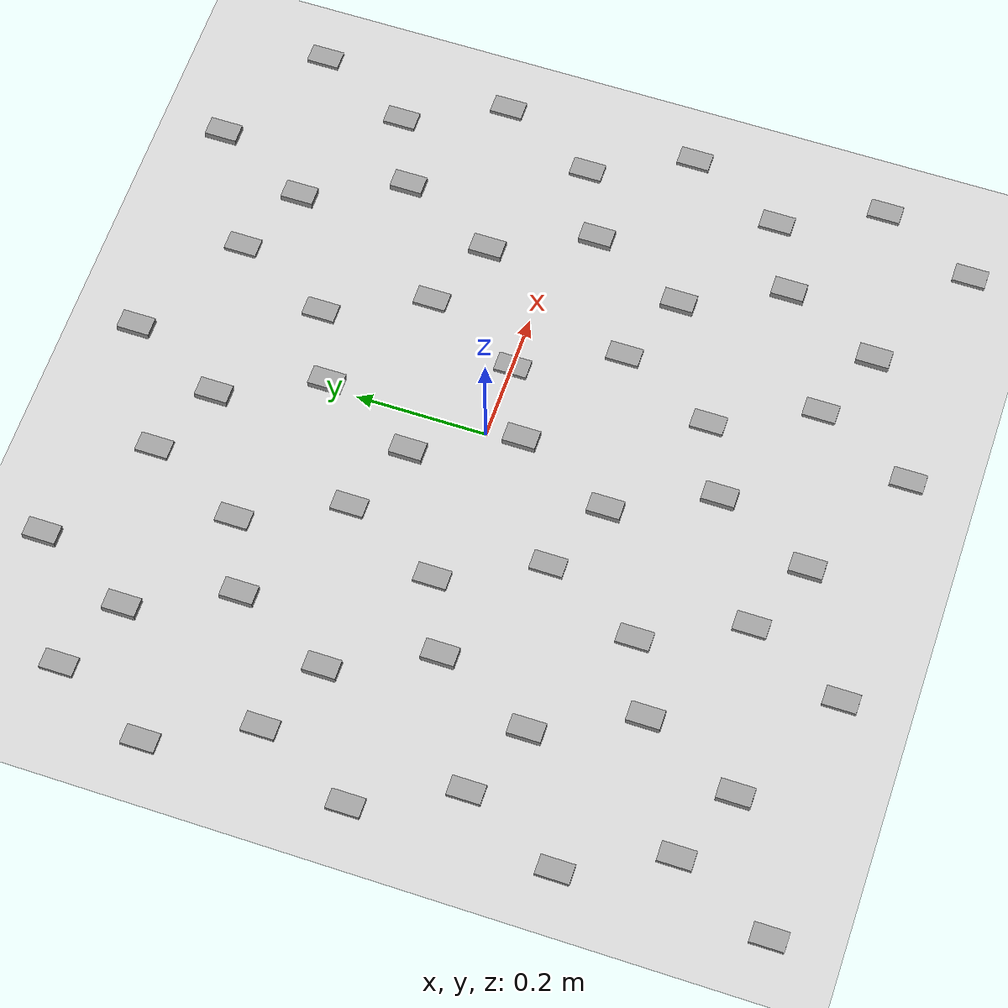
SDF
<sdf version="1.5">
 <world name="default">
  <model name="unit_box_0">
   <pose>-0.6 -0.6 0 0 0 0</pose>
   <link name="link">
    <inertial>
     <mass>1</mass>
     <inertia><ixx>0</ixx><ixy>0</ixy><ixz>0</ixz><iyy>0</iyy><iyz>0</iyz><izz>0</izz></inertia>
    </inertial>
    <collision name="collision"><geometry><box><size>0.03 0.05 0.01</size></box></geometry></collision>
    <visual name="visual">
     <geometry><box><size>0.03 0.05 0.01</size></box></geometry>
     <material>
      <script><name>Gazebo/Grey</name><uri>file://media/materials/scripts/gazebo.material</uri></script>
     </material>
    </visual>
   </link>
  </model>
  <model name="unit_box_1">
   <pose>-0.53 -0.45 0 0 0 0</pose>
   <link name="link">
    <inertial>
     <mass>1</mass>
     <inertia><ixx>0</ixx><ixy>0</ixy><ixz>0</ixz><iyy>0</iyy><iyz>0</iyz><izz>0</izz></inertia>
    </inertial>
    <collision name="collision"><geometry><box><size>0.03 0.05 0.01</size></box></geometry></collision>
    <visual name="visual">
     <geometry><box><size>0.03 0.05 0.01</size></box></geometry>
     <material>
      <script><name>Gazebo/Grey</name><uri>file://media/materials/scripts/gazebo.material</uri></script>
     </material>
    </visual>
   </link>
  </model>
  <model name="unit_box_2">
   <pose>-0.6 -0.3 0 0 0 0</pose>
   <link name="link">
    <inertial>
     <mass>1</mass>
     <inertia><ixx>0</ixx><ixy>0</ixy><ixz>0</ixz><iyy>0</iyy><iyz>0</iyz><izz>0</izz></inertia>
    </inertial>
    <collision name="collision"><geometry><box><size>0.03 0.05 0.01</size></box></geometry></collision>
    <visual name="visual">
     <geometry><box><size>0.03 0.05 0.01</size></box></geometry>
     <material>
      <script><name>Gazebo/Grey</name><uri>file://media/materials/scripts/gazebo.material</uri></script>
     </material>
    </visual>
   </link>
  </model>
  <model name="unit_box_3">
   <pose>-0.53 -0.15 0 0 0 0</pose>
   <link name="link">
    <inertial>
     <mass>1</mass>
     <inertia><ixx>0</ixx><ixy>0</ixy><ixz>0</ixz><iyy>0</iyy><iyz>0</iyz><izz>0</izz></inertia>
    </inertial>
    <collision name="collision"><geometry><box><size>0.03 0.05 0.01</size></box></geometry></collision>
    <visual name="visual">
     <geometry><box><size>0.03 0.05 0.01</size></box></geometry>
     <material>
      <script><name>Gazebo/Grey</name><uri>file://media/materials/scripts/gazebo.material</uri></script>
     </material>
    </visual>
   </link>
  </model>
  <model name="unit_box_4">
   <pose>-0.6 6.93889390390723e-17 0 0 0 0</pose>
   <link name="link">
    <inertial>
     <mass>1</mass>
     <inertia><ixx>0</ixx><ixy>0</ixy><ixz>0</ixz><iyy>0</iyy><iyz>0</iyz><izz>0</izz></inertia>
    </inertial>
    <collision name="collision"><geometry><box><size>0.03 0.05 0.01</size></box></geometry></collision>
    <visual name="visual">
     <geometry><box><size>0.03 0.05 0.01</size></box></geometry>
     <material>
      <script><name>Gazebo/Grey</name><uri>file://media/materials/scripts/gazebo.material</uri></script>
     </material>
    </visual>
   </link>
  </model>
  <model name="unit_box_5">
   <pose>-0.53 0.15 0 0 0 0</pose>
   <link name="link">
    <inertial>
     <mass>1</mass>
     <inertia><ixx>0</ixx><ixy>0</ixy><ixz>0</ixz><iyy>0</iyy><iyz>0</iyz><izz>0</izz></inertia>
    </inertial>
    <collision name="collision"><geometry><box><size>0.03 0.05 0.01</size></box></geometry></collision>
    <visual name="visual">
     <geometry><box><size>0.03 0.05 0.01</size></box></geometry>
     <material>
      <script><name>Gazebo/Grey</name><uri>file://media/materials/scripts/gazebo.material</uri></script>
     </material>
    </visual>
   </link>
  </model>
  <model name="unit_box_6">
   <pose>-0.6 0.3 0 0 0 0</pose>
   <link name="link">
    <inertial>
     <mass>1</mass>
     <inertia><ixx>0</ixx><ixy>0</ixy><ixz>0</ixz><iyy>0</iyy><iyz>0</iyz><izz>0</izz></inertia>
    </inertial>
    <collision name="collision"><geometry><box><size>0.03 0.05 0.01</size></box></geometry></collision>
    <visual name="visual">
     <geometry><box><size>0.03 0.05 0.01</size></box></geometry>
     <material>
      <script><name>Gazebo/Grey</name><uri>file://media/materials/scripts/gazebo.material</uri></script>
     </material>
    </visual>
   </link>
  </model>
  <model name="unit_box_7">
   <pose>-0.53 0.45 0 0 0 0</pose>
   <link name="link">
    <inertial>
     <mass>1</mass>
     <inertia><ixx>0</ixx><ixy>0</ixy><ixz>0</ixz><iyy>0</iyy><iyz>0</iyz><izz>0</izz></inertia>
    </inertial>
    <collision name="collision"><geometry><box><size>0.03 0.05 0.01</size></box></geometry></collision>
    <visual name="visual">
     <geometry><box><size>0.03 0.05 0.01</size></box></geometry>
     <material>
      <script><name>Gazebo/Grey</name><uri>file://media/materials/scripts/gazebo.material</uri></script>
     </material>
    </visual>
   </link>
  </model>
  <model name="unit_box_8">
   <pose>-0.42 -0.5 0 0 0 0</pose>
   <link name="link">
    <inertial>
     <mass>1</mass>
     <inertia><ixx>0</ixx><ixy>0</ixy><ixz>0</ixz><iyy>0</iyy><iyz>0</iyz><izz>0</izz></inertia>
    </inertial>
    <collision name="collision"><geometry><box><size>0.03 0.05 0.02</size></box></geometry></collision>
    <visual name="visual">
     <geometry><box><size>0.03 0.05 0.02</size></box></geometry>
     <material>
      <script><name>Gazebo/Grey</name><uri>file://media/materials/scripts/gazebo.material</uri></script>
     </material>
    </visual>
   </link>
  </model>
  <model name="unit_box_9">
   <pose>-0.35 -0.35 0 0 0 0</pose>
   <link name="link">
    <inertial>
     <mass>1</mass>
     <inertia><ixx>0</ixx><ixy>0</ixy><ixz>0</ixz><iyy>0</iyy><iyz>0</iyz><izz>0</izz></inertia>
    </inertial>
    <collision name="collision"><geometry><box><size>0.03 0.05 0.02</size></box></geometry></collision>
    <visual name="visual">
     <geometry><box><size>0.03 0.05 0.02</size></box></geometry>
     <material>
      <script><name>Gazebo/Grey</name><uri>file://media/materials/scripts/gazebo.material</uri></script>
     </material>
    </visual>
   </link>
  </model>
  <model name="unit_box_10">
   <pose>-0.42 -0.2 0 0 0 0</pose>
   <link name="link">
    <inertial>
     <mass>1</mass>
     <inertia><ixx>0</ixx><ixy>0</ixy><ixz>0</ixz><iyy>0</iyy><iyz>0</iyz><izz>0</izz></inertia>
    </inertial>
    <collision name="collision"><geometry><box><size>0.03 0.05 0.02</size></box></geometry></collision>
    <visual name="visual">
     <geometry><box><size>0.03 0.05 0.02</size></box></geometry>
     <material>
      <script><name>Gazebo/Grey</name><uri>file://media/materials/scripts/gazebo.material</uri></script>
     </material>
    </visual>
   </link>
  </model>
  <model name="unit_box_11">
   <pose>-0.35 -0.05 0 0 0 0</pose>
   <link name="link">
    <inertial>
     <mass>1</mass>
     <inertia><ixx>0</ixx><ixy>0</ixy><ixz>0</ixz><iyy>0</iyy><iyz>0</iyz><izz>0</izz></inertia>
    </inertial>
    <collision name="collision"><geometry><box><size>0.03 0.05 0.02</size></box></geometry></collision>
    <visual name="visual">
     <geometry><box><size>0.03 0.05 0.02</size></box></geometry>
     <material>
      <script><name>Gazebo/Grey</name><uri>file://media/materials/scripts/gazebo.material</uri></script>
     </material>
    </visual>
   </link>
  </model>
  <model name="unit_box_12">
   <pose>-0.42 0.1 0 0 0 0</pose>
   <link name="link">
    <inertial>
     <mass>1</mass>
     <inertia><ixx>0</ixx><ixy>0</ixy><ixz>0</ixz><iyy>0</iyy><iyz>0</iyz><izz>0</izz></inertia>
    </inertial>
    <collision name="collision"><geometry><box><size>0.03 0.05 0.02</size></box></geometry></collision>
    <visual name="visual">
     <geometry><box><size>0.03 0.05 0.02</size></box></geometry>
     <material>
      <script><name>Gazebo/Grey</name><uri>file://media/materials/scripts/gazebo.material</uri></script>
     </material>
    </visual>
   </link>
  </model>
  <model name="unit_box_13">
   <pose>-0.35 0.25 0 0 0 0</pose>
   <link name="link">
    <inertial>
     <mass>1</mass>
     <inertia><ixx>0</ixx><ixy>0</ixy><ixz>0</ixz><iyy>0</iyy><iyz>0</iyz><izz>0</izz></inertia>
    </inertial>
    <collision name="collision"><geometry><box><size>0.03 0.05 0.02</size></box></geometry></collision>
    <visual name="visual">
     <geometry><box><size>0.03 0.05 0.02</size></box></geometry>
     <material>
      <script><name>Gazebo/Grey</name><uri>file://media/materials/scripts/gazebo.material</uri></script>
     </material>
    </visual>
   </link>
  </model>
  <model name="unit_box_14">
   <pose>-0.42 0.4 0 0 0 0</pose>
   <link name="link">
    <inertial>
     <mass>1</mass>
     <inertia><ixx>0</ixx><ixy>0</ixy><ixz>0</ixz><iyy>0</iyy><iyz>0</iyz><izz>0</izz></inertia>
    </inertial>
    <collision name="collision"><geometry><box><size>0.03 0.05 0.02</size></box></geometry></collision>
    <visual name="visual">
     <geometry><box><size>0.03 0.05 0.02</size></box></geometry>
     <material>
      <script><name>Gazebo/Grey</name><uri>file://media/materials/scripts/gazebo.material</uri></script>
     </material>
    </visual>
   </link>
  </model>
  <model name="unit_box_15">
   <pose>-0.35 0.55 0 0 0 0</pose>
   <link name="link">
    <inertial>
     <mass>1</mass>
     <inertia><ixx>0</ixx><ixy>0</ixy><ixz>0</ixz><iyy>0</iyy><iyz>0</iyz><izz>0</izz></inertia>
    </inertial>
    <collision name="collision"><geometry><box><size>0.03 0.05 0.02</size></box></geometry></collision>
    <visual name="visual">
     <geometry><box><size>0.03 0.05 0.02</size></box></geometry>
     <material>
      <script><name>Gazebo/Grey</name><uri>file://media/materials/scripts/gazebo.material</uri></script>
     </material>
    </visual>
   </link>
  </model>
  <model name="unit_box_16">
   <pose>-0.24 -0.6 0 0 0 0</pose>
   <link name="link">
    <inertial>
     <mass>1</mass>
     <inertia><ixx>0</ixx><ixy>0</ixy><ixz>0</ixz><iyy>0</iyy><iyz>0</iyz><izz>0</izz></inertia>
    </inertial>
    <collision name="collision"><geometry><box><size>0.03 0.05 0.01</size></box></geometry></collision>
    <visual name="visual">
     <geometry><box><size>0.03 0.05 0.01</size></box></geometry>
     <material>
      <script><name>Gazebo/Grey</name><uri>file://media/materials/scripts/gazebo.material</uri></script>
     </material>
    </visual>
   </link>
  </model>
  <model name="unit_box_17">
   <pose>-0.17 -0.45 0 0 0 0</pose>
   <link name="link">
    <inertial>
     <mass>1</mass>
     <inertia><ixx>0</ixx><ixy>0</ixy><ixz>0</ixz><iyy>0</iyy><iyz>0</iyz><izz>0</izz></inertia>
    </inertial>
    <collision name="collision"><geometry><box><size>0.03 0.05 0.01</size></box></geometry></collision>
    <visual name="visual">
     <geometry><box><size>0.03 0.05 0.01</size></box></geometry>
     <material>
      <script><name>Gazebo/Grey</name><uri>file://media/materials/scripts/gazebo.material</uri></script>
     </material>
    </visual>
   </link>
  </model>
  <model name="unit_box_18">
   <pose>-0.24 -0.3 0 0 0 0</pose>
   <link name="link">
    <inertial>
     <mass>1</mass>
     <inertia><ixx>0</ixx><ixy>0</ixy><ixz>0</ixz><iyy>0</iyy><iyz>0</iyz><izz>0</izz></inertia>
    </inertial>
    <collision name="collision"><geometry><box><size>0.03 0.05 0.01</size></box></geometry></collision>
    <visual name="visual">
     <geometry><box><size>0.03 0.05 0.01</size></box></geometry>
     <material>
      <script><name>Gazebo/Grey</name><uri>file://media/materials/scripts/gazebo.material</uri></script>
     </material>
    </visual>
   </link>
  </model>
  <model name="unit_box_19">
   <pose>-0.17 -0.15 0 0 0 0</pose>
   <link name="link">
    <inertial>
     <mass>1</mass>
     <inertia><ixx>0</ixx><ixy>0</ixy><ixz>0</ixz><iyy>0</iyy><iyz>0</iyz><izz>0</izz></inertia>
    </inertial>
    <collision name="collision"><geometry><box><size>0.03 0.05 0.01</size></box></geometry></collision>
    <visual name="visual">
     <geometry><box><size>0.03 0.05 0.01</size></box></geometry>
     <material>
      <script><name>Gazebo/Grey</name><uri>file://media/materials/scripts/gazebo.material</uri></script>
     </material>
    </visual>
   </link>
  </model>
  <model name="unit_box_20">
   <pose>-0.24 6.93889390390723e-17 0 0 0 0</pose>
   <link name="link">
    <inertial>
     <mass>1</mass>
     <inertia><ixx>0</ixx><ixy>0</ixy><ixz>0</ixz><iyy>0</iyy><iyz>0</iyz><izz>0</izz></inertia>
    </inertial>
    <collision name="collision"><geometry><box><size>0.03 0.05 0.01</size></box></geometry></collision>
    <visual name="visual">
     <geometry><box><size>0.03 0.05 0.01</size></box></geometry>
     <material>
      <script><name>Gazebo/Grey</name><uri>file://media/materials/scripts/gazebo.material</uri></script>
     </material>
    </visual>
   </link>
  </model>
  <model name="unit_box_21">
   <pose>-0.17 0.15 0 0 0 0</pose>
   <link name="link">
    <inertial>
     <mass>1</mass>
     <inertia><ixx>0</ixx><ixy>0</ixy><ixz>0</ixz><iyy>0</iyy><iyz>0</iyz><izz>0</izz></inertia>
    </inertial>
    <collision name="collision"><geometry><box><size>0.03 0.05 0.01</size></box></geometry></collision>
    <visual name="visual">
     <geometry><box><size>0.03 0.05 0.01</size></box></geometry>
     <material>
      <script><name>Gazebo/Grey</name><uri>file://media/materials/scripts/gazebo.material</uri></script>
     </material>
    </visual>
   </link>
  </model>
  <model name="unit_box_22">
   <pose>-0.24 0.3 0 0 0 0</pose>
   <link name="link">
    <inertial>
     <mass>1</mass>
     <inertia><ixx>0</ixx><ixy>0</ixy><ixz>0</ixz><iyy>0</iyy><iyz>0</iyz><izz>0</izz></inertia>
    </inertial>
    <collision name="collision"><geometry><box><size>0.03 0.05 0.01</size></box></geometry></collision>
    <visual name="visual">
     <geometry><box><size>0.03 0.05 0.01</size></box></geometry>
     <material>
      <script><name>Gazebo/Grey</name><uri>file://media/materials/scripts/gazebo.material</uri></script>
     </material>
    </visual>
   </link>
  </model>
  <model name="unit_box_23">
   <pose>-0.17 0.45 0 0 0 0</pose>
   <link name="link">
    <inertial>
     <mass>1</mass>
     <inertia><ixx>0</ixx><ixy>0</ixy><ixz>0</ixz><iyy>0</iyy><iyz>0</iyz><izz>0</izz></inertia>
    </inertial>
    <collision name="collision"><geometry><box><size>0.03 0.05 0.01</size></box></geometry></collision>
    <visual name="visual">
     <geometry><box><size>0.03 0.05 0.01</size></box></geometry>
     <material>
      <script><name>Gazebo/Grey</name><uri>file://media/materials/scripts/gazebo.material</uri></script>
     </material>
    </visual>
   </link>
  </model>
  <model name="unit_box_24">
   <pose>-0.0599999999999999 -0.5 0 0 0 0</pose>
   <link name="link">
    <inertial>
     <mass>1</mass>
     <inertia><ixx>0</ixx><ixy>0</ixy><ixz>0</ixz><iyy>0</iyy><iyz>0</iyz><izz>0</izz></inertia>
    </inertial>
    <collision name="collision"><geometry><box><size>0.03 0.05 0.02</size></box></geometry></collision>
    <visual name="visual">
     <geometry><box><size>0.03 0.05 0.02</size></box></geometry>
     <material>
      <script><name>Gazebo/Grey</name><uri>file://media/materials/scripts/gazebo.material</uri></script>
     </material>
    </visual>
   </link>
  </model>
  <model name="unit_box_25">
   <pose>0.0100000000000001 -0.35 0 0 0 0</pose>
   <link name="link">
    <inertial>
     <mass>1</mass>
     <inertia><ixx>0</ixx><ixy>0</ixy><ixz>0</ixz><iyy>0</iyy><iyz>0</iyz><izz>0</izz></inertia>
    </inertial>
    <collision name="collision"><geometry><box><size>0.03 0.05 0.02</size></box></geometry></collision>
    <visual name="visual">
     <geometry><box><size>0.03 0.05 0.02</size></box></geometry>
     <material>
      <script><name>Gazebo/Grey</name><uri>file://media/materials/scripts/gazebo.material</uri></script>
     </material>
    </visual>
   </link>
  </model>
  <model name="unit_box_26">
   <pose>-0.0599999999999999 -0.2 0 0 0 0</pose>
   <link name="link">
    <inertial>
     <mass>1</mass>
     <inertia><ixx>0</ixx><ixy>0</ixy><ixz>0</ixz><iyy>0</iyy><iyz>0</iyz><izz>0</izz></inertia>
    </inertial>
    <collision name="collision"><geometry><box><size>0.03 0.05 0.02</size></box></geometry></collision>
    <visual name="visual">
     <geometry><box><size>0.03 0.05 0.02</size></box></geometry>
     <material>
      <script><name>Gazebo/Grey</name><uri>file://media/materials/scripts/gazebo.material</uri></script>
     </material>
    </visual>
   </link>
  </model>
  <model name="unit_box_27">
   <pose>0.0100000000000001 -0.05 0 0 0 0</pose>
   <link name="link">
    <inertial>
     <mass>1</mass>
     <inertia><ixx>0</ixx><ixy>0</ixy><ixz>0</ixz><iyy>0</iyy><iyz>0</iyz><izz>0</izz></inertia>
    </inertial>
    <collision name="collision"><geometry><box><size>0.03 0.05 0.02</size></box></geometry></collision>
    <visual name="visual">
     <geometry><box><size>0.03 0.05 0.02</size></box></geometry>
     <material>
      <script><name>Gazebo/Grey</name><uri>file://media/materials/scripts/gazebo.material</uri></script>
     </material>
    </visual>
   </link>
  </model>
  <model name="unit_box_28">
   <pose>-0.0599999999999999 0.1 0 0 0 0</pose>
   <link name="link">
    <inertial>
     <mass>1</mass>
     <inertia><ixx>0</ixx><ixy>0</ixy><ixz>0</ixz><iyy>0</iyy><iyz>0</iyz><izz>0</izz></inertia>
    </inertial>
    <collision name="collision"><geometry><box><size>0.03 0.05 0.02</size></box></geometry></collision>
    <visual name="visual">
     <geometry><box><size>0.03 0.05 0.02</size></box></geometry>
     <material>
      <script><name>Gazebo/Grey</name><uri>file://media/materials/scripts/gazebo.material</uri></script>
     </material>
    </visual>
   </link>
  </model>
  <model name="unit_box_29">
   <pose>0.0100000000000001 0.25 0 0 0 0</pose>
   <link name="link">
    <inertial>
     <mass>1</mass>
     <inertia><ixx>0</ixx><ixy>0</ixy><ixz>0</ixz><iyy>0</iyy><iyz>0</iyz><izz>0</izz></inertia>
    </inertial>
    <collision name="collision"><geometry><box><size>0.03 0.05 0.02</size></box></geometry></collision>
    <visual name="visual">
     <geometry><box><size>0.03 0.05 0.02</size></box></geometry>
     <material>
      <script><name>Gazebo/Grey</name><uri>file://media/materials/scripts/gazebo.material</uri></script>
     </material>
    </visual>
   </link>
  </model>
  <model name="unit_box_30">
   <pose>-0.0599999999999999 0.4 0 0 0 0</pose>
   <link name="link">
    <inertial>
     <mass>1</mass>
     <inertia><ixx>0</ixx><ixy>0</ixy><ixz>0</ixz><iyy>0</iyy><iyz>0</iyz><izz>0</izz></inertia>
    </inertial>
    <collision name="collision"><geometry><box><size>0.03 0.05 0.02</size></box></geometry></collision>
    <visual name="visual">
     <geometry><box><size>0.03 0.05 0.02</size></box></geometry>
     <material>
      <script><name>Gazebo/Grey</name><uri>file://media/materials/scripts/gazebo.material</uri></script>
     </material>
    </visual>
   </link>
  </model>
  <model name="unit_box_31">
   <pose>0.0100000000000001 0.55 0 0 0 0</pose>
   <link name="link">
    <inertial>
     <mass>1</mass>
     <inertia><ixx>0</ixx><ixy>0</ixy><ixz>0</ixz><iyy>0</iyy><iyz>0</iyz><izz>0</izz></inertia>
    </inertial>
    <collision name="collision"><geometry><box><size>0.03 0.05 0.02</size></box></geometry></collision>
    <visual name="visual">
     <geometry><box><size>0.03 0.05 0.02</size></box></geometry>
     <material>
      <script><name>Gazebo/Grey</name><uri>file://media/materials/scripts/gazebo.material</uri></script>
     </material>
    </visual>
   </link>
  </model>
  <model name="unit_box_32">
   <pose>0.12 -0.6 0 0 0 0</pose>
   <link name="link">
    <inertial>
     <mass>1</mass>
     <inertia><ixx>0</ixx><ixy>0</ixy><ixz>0</ixz><iyy>0</iyy><iyz>0</iyz><izz>0</izz></inertia>
    </inertial>
    <collision name="collision"><geometry><box><size>0.03 0.05 0.01</size></box></geometry></collision>
    <visual name="visual">
     <geometry><box><size>0.03 0.05 0.01</size></box></geometry>
     <material>
      <script><name>Gazebo/Grey</name><uri>file://media/materials/scripts/gazebo.material</uri></script>
     </material>
    </visual>
   </link>
  </model>
  <model name="unit_box_33">
   <pose>0.19 -0.45 0 0 0 0</pose>
   <link name="link">
    <inertial>
     <mass>1</mass>
     <inertia><ixx>0</ixx><ixy>0</ixy><ixz>0</ixz><iyy>0</iyy><iyz>0</iyz><izz>0</izz></inertia>
    </inertial>
    <collision name="collision"><geometry><box><size>0.03 0.05 0.01</size></box></geometry></collision>
    <visual name="visual">
     <geometry><box><size>0.03 0.05 0.01</size></box></geometry>
     <material>
      <script><name>Gazebo/Grey</name><uri>file://media/materials/scripts/gazebo.material</uri></script>
     </material>
    </visual>
   </link>
  </model>
  <model name="unit_box_34">
   <pose>0.12 -0.3 0 0 0 0</pose>
   <link name="link">
    <inertial>
     <mass>1</mass>
     <inertia><ixx>0</ixx><ixy>0</ixy><ixz>0</ixz><iyy>0</iyy><iyz>0</iyz><izz>0</izz></inertia>
    </inertial>
    <collision name="collision"><geometry><box><size>0.03 0.05 0.01</size></box></geometry></collision>
    <visual name="visual">
     <geometry><box><size>0.03 0.05 0.01</size></box></geometry>
     <material>
      <script><name>Gazebo/Grey</name><uri>file://media/materials/scripts/gazebo.material</uri></script>
     </material>
    </visual>
   </link>
  </model>
  <model name="unit_box_35">
   <pose>0.19 -0.15 0 0 0 0</pose>
   <link name="link">
    <inertial>
     <mass>1</mass>
     <inertia><ixx>0</ixx><ixy>0</ixy><ixz>0</ixz><iyy>0</iyy><iyz>0</iyz><izz>0</izz></inertia>
    </inertial>
    <collision name="collision"><geometry><box><size>0.03 0.05 0.01</size></box></geometry></collision>
    <visual name="visual">
     <geometry><box><size>0.03 0.05 0.01</size></box></geometry>
     <material>
      <script><name>Gazebo/Grey</name><uri>file://media/materials/scripts/gazebo.material</uri></script>
     </material>
    </visual>
   </link>
  </model>
  <model name="unit_box_36">
   <pose>0.12 6.93889390390723e-17 0 0 0 0</pose>
   <link name="link">
    <inertial>
     <mass>1</mass>
     <inertia><ixx>0</ixx><ixy>0</ixy><ixz>0</ixz><iyy>0</iyy><iyz>0</iyz><izz>0</izz></inertia>
    </inertial>
    <collision name="collision"><geometry><box><size>0.03 0.05 0.01</size></box></geometry></collision>
    <visual name="visual">
     <geometry><box><size>0.03 0.05 0.01</size></box></geometry>
     <material>
      <script><name>Gazebo/Grey</name><uri>file://media/materials/scripts/gazebo.material</uri></script>
     </material>
    </visual>
   </link>
  </model>
  <model name="unit_box_37">
   <pose>0.19 0.15 0 0 0 0</pose>
   <link name="link">
    <inertial>
     <mass>1</mass>
     <inertia><ixx>0</ixx><ixy>0</ixy><ixz>0</ixz><iyy>0</iyy><iyz>0</iyz><izz>0</izz></inertia>
    </inertial>
    <collision name="collision"><geometry><box><size>0.03 0.05 0.01</size></box></geometry></collision>
    <visual name="visual">
     <geometry><box><size>0.03 0.05 0.01</size></box></geometry>
     <material>
      <script><name>Gazebo/Grey</name><uri>file://media/materials/scripts/gazebo.material</uri></script>
     </material>
    </visual>
   </link>
  </model>
  <model name="unit_box_38">
   <pose>0.12 0.3 0 0 0 0</pose>
   <link name="link">
    <inertial>
     <mass>1</mass>
     <inertia><ixx>0</ixx><ixy>0</ixy><ixz>0</ixz><iyy>0</iyy><iyz>0</iyz><izz>0</izz></inertia>
    </inertial>
    <collision name="collision"><geometry><box><size>0.03 0.05 0.01</size></box></geometry></collision>
    <visual name="visual">
     <geometry><box><size>0.03 0.05 0.01</size></box></geometry>
     <material>
      <script><name>Gazebo/Grey</name><uri>file://media/materials/scripts/gazebo.material</uri></script>
     </material>
    </visual>
   </link>
  </model>
  <model name="unit_box_39">
   <pose>0.19 0.45 0 0 0 0</pose>
   <link name="link">
    <inertial>
     <mass>1</mass>
     <inertia><ixx>0</ixx><ixy>0</ixy><ixz>0</ixz><iyy>0</iyy><iyz>0</iyz><izz>0</izz></inertia>
    </inertial>
    <collision name="collision"><geometry><box><size>0.03 0.05 0.01</size></box></geometry></collision>
    <visual name="visual">
     <geometry><box><size>0.03 0.05 0.01</size></box></geometry>
     <material>
      <script><name>Gazebo/Grey</name><uri>file://media/materials/scripts/gazebo.material</uri></script>
     </material>
    </visual>
   </link>
  </model>
  <model name="unit_box_40">
   <pose>0.3 -0.5 0 0 0 0</pose>
   <link name="link">
    <inertial>
     <mass>1</mass>
     <inertia><ixx>0</ixx><ixy>0</ixy><ixz>0</ixz><iyy>0</iyy><iyz>0</iyz><izz>0</izz></inertia>
    </inertial>
    <collision name="collision"><geometry><box><size>0.03 0.05 0.02</size></box></geometry></collision>
    <visual name="visual">
     <geometry><box><size>0.03 0.05 0.02</size></box></geometry>
     <material>
      <script><name>Gazebo/Grey</name><uri>file://media/materials/scripts/gazebo.material</uri></script>
     </material>
    </visual>
   </link>
  </model>
  <model name="unit_box_41">
   <pose>0.37 -0.35 0 0 0 0</pose>
   <link name="link">
    <inertial>
     <mass>1</mass>
     <inertia><ixx>0</ixx><ixy>0</ixy><ixz>0</ixz><iyy>0</iyy><iyz>0</iyz><izz>0</izz></inertia>
    </inertial>
    <collision name="collision"><geometry><box><size>0.03 0.05 0.02</size></box></geometry></collision>
    <visual name="visual">
     <geometry><box><size>0.03 0.05 0.02</size></box></geometry>
     <material>
      <script><name>Gazebo/Grey</name><uri>file://media/materials/scripts/gazebo.material</uri></script>
     </material>
    </visual>
   </link>
  </model>
  <model name="unit_box_42">
   <pose>0.3 -0.2 0 0 0 0</pose>
   <link name="link">
    <inertial>
     <mass>1</mass>
     <inertia><ixx>0</ixx><ixy>0</ixy><ixz>0</ixz><iyy>0</iyy><iyz>0</iyz><izz>0</izz></inertia>
    </inertial>
    <collision name="collision"><geometry><box><size>0.03 0.05 0.02</size></box></geometry></collision>
    <visual name="visual">
     <geometry><box><size>0.03 0.05 0.02</size></box></geometry>
     <material>
      <script><name>Gazebo/Grey</name><uri>file://media/materials/scripts/gazebo.material</uri></script>
     </material>
    </visual>
   </link>
  </model>
  <model name="unit_box_43">
   <pose>0.37 -0.05 0 0 0 0</pose>
   <link name="link">
    <inertial>
     <mass>1</mass>
     <inertia><ixx>0</ixx><ixy>0</ixy><ixz>0</ixz><iyy>0</iyy><iyz>0</iyz><izz>0</izz></inertia>
    </inertial>
    <collision name="collision"><geometry><box><size>0.03 0.05 0.02</size></box></geometry></collision>
    <visual name="visual">
     <geometry><box><size>0.03 0.05 0.02</size></box></geometry>
     <material>
      <script><name>Gazebo/Grey</name><uri>file://media/materials/scripts/gazebo.material</uri></script>
     </material>
    </visual>
   </link>
  </model>
  <model name="unit_box_44">
   <pose>0.3 0.1 0 0 0 0</pose>
   <link name="link">
    <inertial>
     <mass>1</mass>
     <inertia><ixx>0</ixx><ixy>0</ixy><ixz>0</ixz><iyy>0</iyy><iyz>0</iyz><izz>0</izz></inertia>
    </inertial>
    <collision name="collision"><geometry><box><size>0.03 0.05 0.02</size></box></geometry></collision>
    <visual name="visual">
     <geometry><box><size>0.03 0.05 0.02</size></box></geometry>
     <material>
      <script><name>Gazebo/Grey</name><uri>file://media/materials/scripts/gazebo.material</uri></script>
     </material>
    </visual>
   </link>
  </model>
  <model name="unit_box_45">
   <pose>0.37 0.25 0 0 0 0</pose>
   <link name="link">
    <inertial>
     <mass>1</mass>
     <inertia><ixx>0</ixx><ixy>0</ixy><ixz>0</ixz><iyy>0</iyy><iyz>0</iyz><izz>0</izz></inertia>
    </inertial>
    <collision name="collision"><geometry><box><size>0.03 0.05 0.02</size></box></geometry></collision>
    <visual name="visual">
     <geometry><box><size>0.03 0.05 0.02</size></box></geometry>
     <material>
      <script><name>Gazebo/Grey</name><uri>file://media/materials/scripts/gazebo.material</uri></script>
     </material>
    </visual>
   </link>
  </model>
  <model name="unit_box_46">
   <pose>0.3 0.4 0 0 0 0</pose>
   <link name="link">
    <inertial>
     <mass>1</mass>
     <inertia><ixx>0</ixx><ixy>0</ixy><ixz>0</ixz><iyy>0</iyy><iyz>0</iyz><izz>0</izz></inertia>
    </inertial>
    <collision name="collision"><geometry><box><size>0.03 0.05 0.02</size></box></geometry></collision>
    <visual name="visual">
     <geometry><box><size>0.03 0.05 0.02</size></box></geometry>
     <material>
      <script><name>Gazebo/Grey</name><uri>file://media/materials/scripts/gazebo.material</uri></script>
     </material>
    </visual>
   </link>
  </model>
  <model name="unit_box_47">
   <pose>0.37 0.55 0 0 0 0</pose>
   <link name="link">
    <inertial>
     <mass>1</mass>
     <inertia><ixx>0</ixx><ixy>0</ixy><ixz>0</ixz><iyy>0</iyy><iyz>0</iyz><izz>0</izz></inertia>
    </inertial>
    <collision name="collision"><geometry><box><size>0.03 0.05 0.02</size></box></geometry></collision>
    <visual name="visual">
     <geometry><box><size>0.03 0.05 0.02</size></box></geometry>
     <material>
      <script><name>Gazebo/Grey</name><uri>file://media/materials/scripts/gazebo.material</uri></script>
     </material>
    </visual>
   </link>
  </model>
  <model name="unit_box_48">
   <pose>0.48 -0.6 0 0 0 0</pose>
   <link name="link">
    <inertial>
     <mass>1</mass>
     <inertia><ixx>0</ixx><ixy>0</ixy><ixz>0</ixz><iyy>0</iyy><iyz>0</iyz><izz>0</izz></inertia>
    </inertial>
    <collision name="collision"><geometry><box><size>0.03 0.05 0.01</size></box></geometry></collision>
    <visual name="visual">
     <geometry><box><size>0.03 0.05 0.01</size></box></geometry>
     <material>
      <script><name>Gazebo/Grey</name><uri>file://media/materials/scripts/gazebo.material</uri></script>
     </material>
    </visual>
   </link>
  </model>
  <model name="unit_box_49">
   <pose>0.55 -0.45 0 0 0 0</pose>
   <link name="link">
    <inertial>
     <mass>1</mass>
     <inertia><ixx>0</ixx><ixy>0</ixy><ixz>0</ixz><iyy>0</iyy><iyz>0</iyz><izz>0</izz></inertia>
    </inertial>
    <collision name="collision"><geometry><box><size>0.03 0.05 0.01</size></box></geometry></collision>
    <visual name="visual">
     <geometry><box><size>0.03 0.05 0.01</size></box></geometry>
     <material>
      <script><name>Gazebo/Grey</name><uri>file://media/materials/scripts/gazebo.material</uri></script>
     </material>
    </visual>
   </link>
  </model>
  <model name="unit_box_50">
   <pose>0.48 -0.3 0 0 0 0</pose>
   <link name="link">
    <inertial>
     <mass>1</mass>
     <inertia><ixx>0</ixx><ixy>0</ixy><ixz>0</ixz><iyy>0</iyy><iyz>0</iyz><izz>0</izz></inertia>
    </inertial>
    <collision name="collision"><geometry><box><size>0.03 0.05 0.01</size></box></geometry></collision>
    <visual name="visual">
     <geometry><box><size>0.03 0.05 0.01</size></box></geometry>
     <material>
      <script><name>Gazebo/Grey</name><uri>file://media/materials/scripts/gazebo.material</uri></script>
     </material>
    </visual>
   </link>
  </model>
  <model name="unit_box_51">
   <pose>0.55 -0.15 0 0 0 0</pose>
   <link name="link">
    <inertial>
     <mass>1</mass>
     <inertia><ixx>0</ixx><ixy>0</ixy><ixz>0</ixz><iyy>0</iyy><iyz>0</iyz><izz>0</izz></inertia>
    </inertial>
    <collision name="collision"><geometry><box><size>0.03 0.05 0.01</size></box></geometry></collision>
    <visual name="visual">
     <geometry><box><size>0.03 0.05 0.01</size></box></geometry>
     <material>
      <script><name>Gazebo/Grey</name><uri>file://media/materials/scripts/gazebo.material</uri></script>
     </material>
    </visual>
   </link>
  </model>
  <model name="unit_box_52">
   <pose>0.48 6.93889390390723e-17 0 0 0 0</pose>
   <link name="link">
    <inertial>
     <mass>1</mass>
     <inertia><ixx>0</ixx><ixy>0</ixy><ixz>0</ixz><iyy>0</iyy><iyz>0</iyz><izz>0</izz></inertia>
    </inertial>
    <collision name="collision"><geometry><box><size>0.03 0.05 0.01</size></box></geometry></collision>
    <visual name="visual">
     <geometry><box><size>0.03 0.05 0.01</size></box></geometry>
     <material>
      <script><name>Gazebo/Grey</name><uri>file://media/materials/scripts/gazebo.material</uri></script>
     </material>
    </visual>
   </link>
  </model>
  <model name="unit_box_53">
   <pose>0.55 0.15 0 0 0 0</pose>
   <link name="link">
    <inertial>
     <mass>1</mass>
     <inertia><ixx>0</ixx><ixy>0</ixy><ixz>0</ixz><iyy>0</iyy><iyz>0</iyz><izz>0</izz></inertia>
    </inertial>
    <collision name="collision"><geometry><box><size>0.03 0.05 0.01</size></box></geometry></collision>
    <visual name="visual">
     <geometry><box><size>0.03 0.05 0.01</size></box></geometry>
     <material>
      <script><name>Gazebo/Grey</name><uri>file://media/materials/scripts/gazebo.material</uri></script>
     </material>
    </visual>
   </link>
  </model>
  <model name="unit_box_54">
   <pose>0.48 0.3 0 0 0 0</pose>
   <link name="link">
    <inertial>
     <mass>1</mass>
     <inertia><ixx>0</ixx><ixy>0</ixy><ixz>0</ixz><iyy>0</iyy><iyz>0</iyz><izz>0</izz></inertia>
    </inertial>
    <collision name="collision"><geometry><box><size>0.03 0.05 0.01</size></box></geometry></collision>
    <visual name="visual">
     <geometry><box><size>0.03 0.05 0.01</size></box></geometry>
     <material>
      <script><name>Gazebo/Grey</name><uri>file://media/materials/scripts/gazebo.material</uri></script>
     </material>
    </visual>
   </link>
  </model>
  <model name="unit_box_55">
   <pose>0.55 0.45 0 0 0 0</pose>
   <link name="link">
    <inertial>
     <mass>1</mass>
     <inertia><ixx>0</ixx><ixy>0</ixy><ixz>0</ixz><iyy>0</iyy><iyz>0</iyz><izz>0</izz></inertia>
    </inertial>
    <collision name="collision"><geometry><box><size>0.03 0.05 0.01</size></box></geometry></collision>
    <visual name="visual">
     <geometry><box><size>0.03 0.05 0.01</size></box></geometry>
     <material>
      <script><name>Gazebo/Grey</name><uri>file://media/materials/scripts/gazebo.material</uri></script>
     </material>
    </visual>
   </link>
  </model>
  <include><uri>model://sun</uri></include>
  <include><uri>model://tol_ground</uri></include>
 </world>
</sdf>
